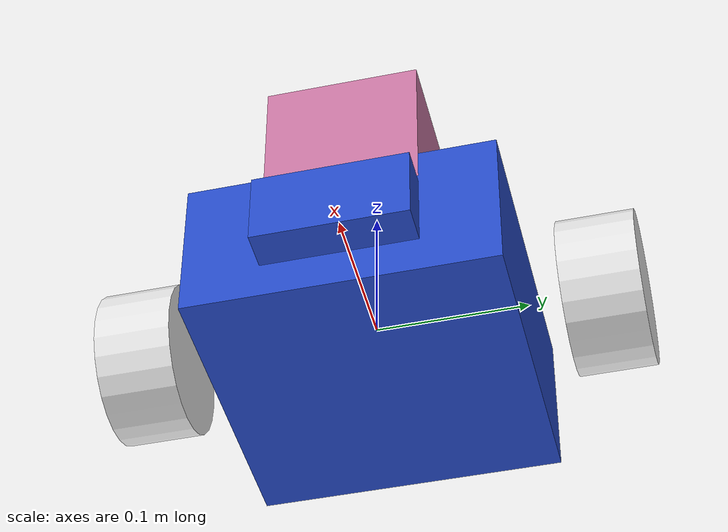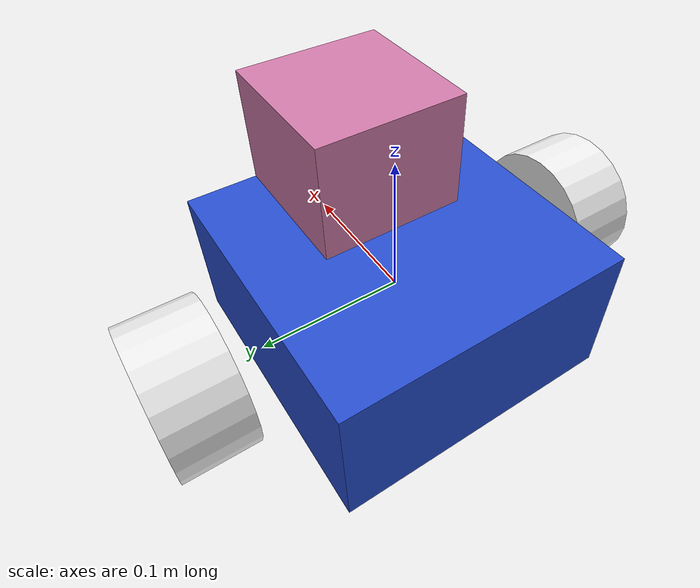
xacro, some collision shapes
<?xml version='1.0'?>

<robot name="my_robot" xmlns:xacro="http://www.ros.org/wiki/xacro">
<xacro:include filename="$(find my_robot)/urdf/my_robot.gazebo" />

  <link name="robot_footprint"></link>

  <gazebo reference="chassis">
    <material>Gazebo/Blue</material>
  </gazebo>

  <gazebo reference="left_wheel">
    <material>Gazebo/White</material>
  </gazebo>

  <gazebo reference="right_wheel">
    <material>Gazebo/White</material>
  </gazebo>

  <gazebo reference="camera">
    <material>Gazebo/Blue</material>
  </gazebo>

  <joint name="robot_footprint_joint" type="fixed">
    <origin xyz="0 0 0" rpy="0 0 0" />
    <parent link="robot_footprint"/>
    <child link="chassis" />
  </joint>

  <link name='chassis'>
    <pose>0 0 0.1 0 0 0</pose>

    <inertial>
      <mass value="15.0"/>
      <origin xyz="0.0 0 0" rpy=" 0 0 0"/>
      <inertia
          ixx="0.1" ixy="0" ixz="0"
          iyy="0.1" iyz="0"
          izz="0.1"
      />
    </inertial>

    <collision name='collision'>
      <origin xyz="0 0 0" rpy=" 0 0 0"/>
      <geometry>
        <box size="0.2 .2 .1"/>
      </geometry>
    </collision>

    <visual name='chassis_visual'>
      <origin xyz="0 0 0" rpy=" 0 0 0"/>
      <geometry>
        <box size="0.2 .2 .1"/>
      </geometry>
    </visual>

  </link>

  <joint type="continuous" name="left_wheel_hinge">
    <origin xyz="0 0.15 0" rpy="0 0 0"/>
    <child link="left_wheel"/>
    <parent link="chassis"/>
    <axis xyz="0 1 0" rpy="0 0 0"/>
    <limit effort="10000" velocity="1000"/>
    <dynamics damping="1.0" friction="1.0"/>
  </joint>

  <link name='left_wheel'>
    <inertial>
      <mass value="5.0"/>
      <origin xyz="0.0 0 0" rpy=" 0 1.5707 1.5707"/>
      <inertia
          ixx="0.1" ixy="0" ixz="0"
          iyy="0.1" iyz="0"
          izz="0.1"
      />
    </inertial>

    <collision name='left_wheel_collision'>
      <origin xyz="0 0 0" rpy=" 0 1.5707 1.5707"/>
      <geometry>
        <cylinder length="0.05" radius="0.05"/>
      </geometry>
    </collision>

    <visual name='left_wheel_visual'>
      <origin xyz="0 0 0" rpy=" 0 1.5705 1.5707"/>
      <geometry>
        <cylinder length="0.05" radius="0.05"/>
      </geometry>
    </visual>
  </link>

  <joint type="continuous" name="right_wheel_hinge">
    <origin xyz="0 -0.15 0" rpy="0 0 0"/>
    <child link="right_wheel"/>
    <parent link="chassis"/>
    <axis xyz="0 1 0" rpy="0 0 0"/>
    <limit effort="10000" velocity="1000"/>
    <dynamics damping="1.0" friction="1.0"/>
  </joint>

  <link name='right_wheel'>
    <inertial>
      <mass value="5.0"/>
      <origin xyz="0.0 0 0" rpy=" 0 1.5707 1.5707"/>
      <inertia
          ixx="0.1" ixy="0" ixz="0"
          iyy="0.1" iyz="0"
          izz="0.1"
      />
    </inertial>

    <collision name='right_wheel_collision'>
      <origin xyz="0 0 0" rpy=" 0 1.5707 1.5707"/>
      <geometry>
        <cylinder length="0.05" radius="0.05"/>
      </geometry>
    </collision>

    <visual name='right_wheel_visual'>
      <origin xyz="0 0 0" rpy=" 0 1.5705 1.5707"/>
      <geometry>
        <cylinder length="0.05" radius="0.05"/>
      </geometry>
    </visual>
  </link>

  <joint type="fixed" name="camera_joint">
    <origin xyz="0.1 0 0" rpy="0 0 0"/>
    <child link="camera"/>
    <parent link="chassis"/>
    <axis xyz="0 1 0" rpy="0 0 0"/>
  </joint>

  <link name="camera">
    <inertial>
      <mass value="0.1"/>
      <origin xyz="0 0 0" rpy="0 0 0"/>
      <inertia
          ixx="1e-6" ixy="0" ixz="0"
          iyy="1e-6" iyz="0"
          izz="1e-6"
      />
    </inertial>

    <collision name='camera_collision'>
      <origin xyz="0 0 0" rpy=" 0 0 0"/>
      <geometry>
        <box size="0.05 0.1 0.05"/>
      </geometry>
    </collision>

    <visual name='camera_visual'>
      <origin xyz="0 0 0" rpy=" 0 0 0"/>
      <geometry>
        <box size="0.05 0.1 0.05"/>
      </geometry>
    </visual>
  </link>

<joint name="camera_optical_joint" type="fixed">
    <origin xyz="0 0 0" rpy="-1.5707 0 -1.5707"/>
    <parent link="camera"/>
    <child link="camera_link_optical"/>
  </joint>

  <link name="camera_link_optical">
  </link>

  <joint type="fixed" name="hokuyo_joint">
    <origin xyz="0.05 0 0.08" rpy="0 0 0"/>
    <child link="hokuyo"/>
    <parent link="chassis"/>
    <axis xyz="0 1 0" rpy="0 0 0"/>
  </joint>

  <link name="hokuyo">
    <inertial>
      <mass value="1e-5"/>
      <origin xyz="0 0 0" rpy="0 0 0"/>
      <inertia
          ixx="1e-6" ixy="0" ixz="0"
          iyy="1e-6" iyz="0"
          izz="1e-6"
      />
    </inertial>

    <collision name='hokuyo_collision'>
      <origin xyz="0 0 0" rpy=" 0 0 0"/>
      <geometry>
        <box size="0.1 0.1 0.1"/>
      </geometry>
    </collision>

    <visual name='hokuyo_visual'>
      <origin xyz="0 0 0" rpy=" 0 0 0"/>
      <geometry>
        <mesh filename="package://my_robot/meshes/hokuyo.dae"/>
      </geometry>
    </visual>
  </link>

</robot>
